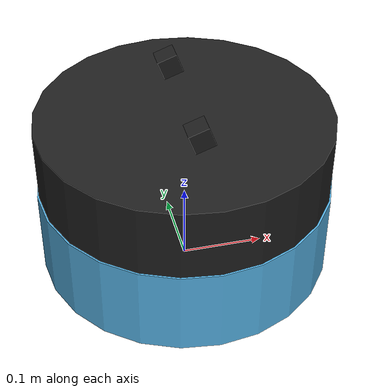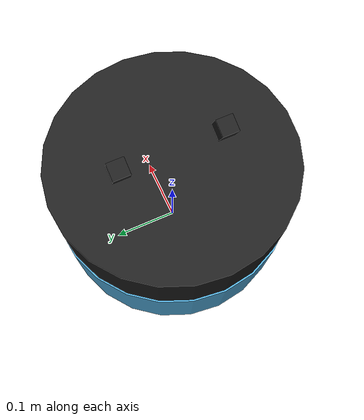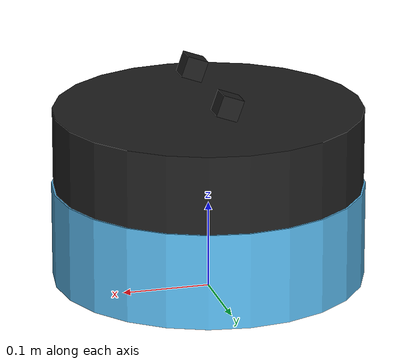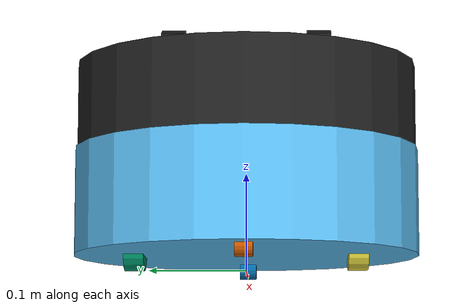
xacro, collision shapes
<?xml version="1.0"?>
<robot name="kobuki_standalone"
       xmlns:sensor="http://playerstage.sourceforge.net/gazebo/xmlschema/#sensor"
       xmlns:controller="http://playerstage.sourceforge.net/gazebo/xmlschema/#controller"
       xmlns:interface="http://playerstage.sourceforge.net/gazebo/xmlschema/#interface"
       xmlns:xacro="http://ros.org/wiki/xacro">

  <!-- Defines the kobuki component tag. -->
  <xacro:include filename="$(find robot_descriptions)/UGV2/urdf/hast_ugv2_kobuki.urdf.xacro" />
  <kobuki_stereo/>
</robot>

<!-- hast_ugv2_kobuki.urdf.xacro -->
<robot name="kobuki" xmlns:xacro="http://ros.org/wiki/xacro">
  <xacro:property name="X_ROBOT_NAMESPACE" value="/gazebo/kobuki" />
  <!-- Included Files -->
    <xacro:include filename="$(find robot_descriptions)/UGV2/urdf/common_properties.urdf.xacro"/>
    <xacro:include filename="$(find robot_descriptions)/UGV2/urdf/hast_ugv2_pgrstereo.urdf.xacro"/>
    <xacro:include filename="$(find robot_descriptions)/UGV2/urdf/hast_ugv2_kobuki_gazebo.urdf.xacro"/>
  <!-- Xacro properties -->
    <xacro:property name="X_PI" value="3.1415926535897931" />
    <xacro:property name="X_RADIUS" value="0.02" />
    <xacro:property name="X_LENGTH" value="0.1" />
    <xacro:property name="camera_box" value="0.025" /> <!-- Size of square 'camera' box -->

  <xacro:macro name="kobuki_stereo">
    <!-- Kobuki Hardware -->
      <link name="base_footprint"/>
      <joint name="base_joint" type="fixed">
        <origin xyz="0 0 0.0102" rpy="0 0 0" />
        <parent link="base_footprint"/>
        <child link="${X_ROBOT_NAMESPACE}/base_link" />
      </joint>
      <link name="${X_ROBOT_NAMESPACE}/base_link">
        <visual>
          <geometry>
            <!-- new mesh -->
            <mesh filename="package://robot_descriptions/UGV2/meshes/main_body.dae" />
          </geometry>
          <origin xyz="0.001 0 0.05199" rpy="0 0 0"/>
        </visual>
        <collision name="base">
          <geometry>
            <cylinder length="0.10938" radius="0.178"/>
          </geometry>
          <origin xyz="0.0 0 0.05949" rpy="0 0 0"/>
        </collision>
        <inertial>
          <mass value="2.4"/> <!-- 2.4/2.6 kg for small/big battery pack -->
          <origin xyz="0.01 0 0"/>
          <inertia ixx="0.019995" ixy="0.0" ixz="0.0" iyy="0.019995" iyz="0.0" izz="0.03675" />
        </inertial>
      </link>

      <joint name="wheel_left_joint" type="continuous">
			<parent link="${X_ROBOT_NAMESPACE}/base_link"/>
			<child link="${X_ROBOT_NAMESPACE}/wheel_left_link"/>
			<origin xyz="0.00 ${0.23/2} 0.0250" rpy="${-M_PI/2} 0 0"/>
			<axis xyz="0 0 1"/>
      </joint>
      <link name="${X_ROBOT_NAMESPACE}/wheel_left_link">
			<visual>
			 <geometry>
			   <mesh filename="package://robot_descriptions/UGV2/meshes/wheel.dae"/>
			 </geometry>
			 <origin xyz="0 0 0" rpy="0 0 0"/>
			</visual>
			<collision>
			 <geometry>
			   <cylinder length="0.0206" radius="0.0352"/>
			 </geometry>
			 <origin rpy="0 0 0" xyz="0 0 0"/>
			</collision>
			<inertial>
				<mass value="0.01" />
				<origin xyz="0 0 0" />
				<inertia ixx="0.001" ixy="0.0" ixz="0.0" iyy="0.001" iyz="0.0" izz="0.001" />
			</inertial>
      </link>

      <joint name="wheel_right_joint" type="continuous">
			<parent link="${X_ROBOT_NAMESPACE}/base_link"/>
			<child link="${X_ROBOT_NAMESPACE}/wheel_right_link"/>
			<origin xyz="0.00 -${0.23/2} 0.0250" rpy="${-M_PI/2} 0 0"/>
			<axis xyz="0 0 1"/>
      </joint>
      <link name="${X_ROBOT_NAMESPACE}/wheel_right_link">
			<visual>
			 <geometry>
			   <mesh filename="package://robot_descriptions/UGV2/meshes/wheel.dae"/>
			 </geometry>
			 <origin xyz="0 0 0" rpy="0 0 0"/>
			</visual>
			<collision>
			 <geometry>
			   <cylinder length="0.0206" radius="0.0350"/>
			 </geometry>
			 <origin rpy="0 0 0" xyz="0 0 0"/>
			</collision>
			<inertial>
				<mass value="0.01" />
				<origin xyz="0 0 0" />
				<inertia ixx="0.001" ixy="0.0" ixz="0.0" iyy="0.001" iyz="0.0" izz="0.001" />
			</inertial>
      </link>

		<joint name="caster_front_joint" type="fixed">
			<parent link="${X_ROBOT_NAMESPACE}/base_link"/>
			<child link="${X_ROBOT_NAMESPACE}/caster_front_link"/>
			<origin xyz="0.115 0.0 0.007" rpy="${-M_PI/2} 0 0"/>
		</joint>
		<link name="${X_ROBOT_NAMESPACE}/caster_front_link">
			<collision>
			 <geometry>
			   <cylinder length="0.0176" radius="0.017"/>
			 </geometry>
			 <origin rpy="0 0 0" xyz="0 0 0"/>
			</collision>
			<inertial>
			<mass value="0.01" />
			<origin xyz="0 0 0" />
			<inertia ixx="0.001" ixy="0.0" ixz="0.0" iyy="0.001" iyz="0.0" izz="0.001" />
			</inertial>
		</link>

		<joint name="caster_back_joint" type="fixed">
			<parent link="${X_ROBOT_NAMESPACE}/base_link"/>
			<child link="${X_ROBOT_NAMESPACE}/caster_back_link"/>
			<origin xyz="-0.135 0.0 0.009" rpy="${-M_PI/2} 0 0"/>
		</joint>
		<link name="${X_ROBOT_NAMESPACE}/caster_back_link">
			<collision>
				<geometry>
					<cylinder length="0.0176" radius="0.017"/>
				</geometry>
				<origin rpy="0 0 0" xyz="0 0 0"/>
			</collision>
			<inertial>
			<mass value="0.01" />
			<origin xyz="0 0 0" />
			<inertia ixx="0.001" ixy="0.0" ixz="0.0" iyy="0.001" iyz="0.0" izz="0.001" />
			</inertial>
		</link>

    <!-- PC and Camera support -->
      <joint name="frame_joint" type="fixed">
        <origin xyz="0 0 0.148" rpy="0 0 0" />
        <parent link="${X_ROBOT_NAMESPACE}/base_link"/>
        <child link="${X_ROBOT_NAMESPACE}/frame_link" />
      </joint>
      <link name="${X_ROBOT_NAMESPACE}/frame_link">
        <visual>
          <geometry>
            <!-- new mesh -->
            <mesh filename="package://robot_descriptions/UGV2/meshes/hast_kobuki_frame_grey.dae" />
          </geometry>
          <origin xyz="0 0 0" rpy="0 0 0"/>
          <material name="black"/>
        </visual>
        <collision>
          <geometry>
            <cylinder length="0.10938" radius="0.176"/>
          </geometry>
          <origin xyz="0 0 0" rpy="0 0 0"/>
        </collision>
        <inertial>
          <mass value="0.1"/> <!-- 2.4/2.6 kg for small/big battery pack -->
          <origin xyz="0 0 0"/>
          <inertia ixx="0.0001" ixy="0.0" ixz="0.0" iyy="0.0001" iyz="0.0" izz="0.0001" />
        </inertial>
      </link>

    <!-- Camera Definitions -->
      <joint name="stereo_center_joint" type="fixed">
          <origin xyz="-0.0014 0 0.0804" rpy="0 -${20*X_PI/180} 0" />
          <parent link="${X_ROBOT_NAMESPACE}/frame_link"/>
          <child link="${X_ROBOT_NAMESPACE}/stereo_center"/>
      </joint>
      <link name="${X_ROBOT_NAMESPACE}/stereo_center"/>

      <joint name="left_camera_joint" type="fixed">
          <origin xyz="0 0.0762 0" rpy="0 0 0" />
          <parent link="${X_ROBOT_NAMESPACE}/stereo_center"/>
          <child link="${X_ROBOT_NAMESPACE}/stereo_left"/>
      </joint>
      <link name="${X_ROBOT_NAMESPACE}/stereo_left">
        <collision>
          <origin xyz="0 0 0" rpy="0 0 0"/>
          <geometry>
            <box size="${camera_box} ${camera_box} ${camera_box}"/>
          </geometry>
        </collision>
        <visual>
          <origin xyz="0 0 0" rpy="0 0 0"/>
          <geometry>
            <box size="${camera_box} ${camera_box} ${camera_box}"/>
          </geometry>
          <material name="black"/>
        </visual>
        <inertial>
          <mass value="1e-5" />
          <origin xyz="0 0 0" rpy="0 0 0"/>
          <inertia ixx="1e-6" ixy="0" ixz="0" iyy="1e-6" iyz="0" izz="1e-6" />
        </inertial>
      </link>

      <joint name="right_camera_joint" type="fixed">
          <origin xyz="0 -0.0762 0" rpy="0 0 0" />
          <parent link="${X_ROBOT_NAMESPACE}/stereo_center"/>
          <child link="${X_ROBOT_NAMESPACE}/stereo_right"/>
      </joint>
      <link name="${X_ROBOT_NAMESPACE}/stereo_right">
        <collision>
          <origin xyz="0 0 0" rpy="0 0 0"/>
          <geometry>
            <box size="${camera_box} ${camera_box} ${camera_box}"/>
          </geometry>
        </collision>
        <visual>
          <origin xyz="0 0 0" rpy="0 0 0"/>
          <geometry>
            <box size="${camera_box} ${camera_box} ${camera_box}"/>
          </geometry>
          <material name="black"/>
        </visual>
        <inertial>
          <mass value="1e-5" />
          <origin xyz="0 0 0" rpy="0 0 0"/>
          <inertia ixx="1e-6" ixy="0" ixz="0" iyy="1e-6" iyz="0" izz="1e-6" />
        </inertial>
      </link>

    <!-- Kobuki's sensors -->
      <!-- gyro -->
        <joint name="gyro_joint" type="fixed">
          <axis xyz="0 1 0"/>
          <origin xyz="0.056 0.062 0.0202" rpy="0 0 0"/>
          <parent link="${X_ROBOT_NAMESPACE}/base_link"/>
          <child link="${X_ROBOT_NAMESPACE}/gyro_link"/>
        </joint>
        <link name="${X_ROBOT_NAMESPACE}/gyro_link">
          <inertial>
          <mass value="0.001"/>
          <origin xyz="0 0 0" rpy="0 0 0"/>
          <inertia ixx="0.0001" ixy="0" ixz="0" iyy="0.000001" iyz="0" izz="0.0001"/>
          </inertial>
        </link>

      <!-- cliff_sensor_left_joint -->
        <joint name="cliff_sensor_left_joint" type="fixed">
          <origin xyz="0.08734 0.13601 0.0214" rpy="0 ${M_PI/2} 0" />
          <parent link="${X_ROBOT_NAMESPACE}/base_link"/>
          <child link="${X_ROBOT_NAMESPACE}/cliff_sensor_left_link" />
          </joint>
        <link name="${X_ROBOT_NAMESPACE}/cliff_sensor_left_link">
          <inertial>
          <mass value="0.0001" />
          <origin xyz="0 0 0" />
          <inertia ixx="0.0001" ixy="0.0" ixz="0.0" iyy="0.0001" iyz="0.0" izz="0.0001" />
          </inertial>
        </link>

      <!-- cliff_sensor_right -->
        <joint name="cliff_sensor_right_joint" type="fixed">
          <origin xyz="0.085 -0.13601 0.0214" rpy="0 ${M_PI/2} 0" />
          <parent link="${X_ROBOT_NAMESPACE}/base_link"/>
          <child link="${X_ROBOT_NAMESPACE}/cliff_sensor_right_link" />
        </joint>
        <link name="${X_ROBOT_NAMESPACE}/cliff_sensor_right_link">
          <inertial>
          <mass value="0.0001" />
          <origin xyz="0 0 0" />
          <inertia ixx="0.0001" ixy="0.0" ixz="0.0" iyy="0.0001" iyz="0.0" izz="0.0001" />
          </inertial>
        </link>

      <!-- cliff_sensor_front -->
        <joint name="cliff_sensor_front_joint" type="fixed">
          <origin xyz="0.156 0.00 0.0214" rpy="0 ${M_PI/2} 0" />
          <parent link="${X_ROBOT_NAMESPACE}/base_link"/>
          <child link="${X_ROBOT_NAMESPACE}/cliff_sensor_front_link" />
        </joint>
        <link name="${X_ROBOT_NAMESPACE}/cliff_sensor_front_link">
          <inertial>
          <mass value="0.0001" />
          <origin xyz="0 0 0" />
          <inertia ixx="0.0001" ixy="0.0" ixz="0.0" iyy="0.0001" iyz="0.0" izz="0.0001" />
          </inertial>
        </link>

		<!-- Kobuki Gazebo simulation details -->
			<kobuki_sim/>

	</xacro:macro>
</robot>

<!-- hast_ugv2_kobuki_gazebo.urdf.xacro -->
<robot name="kobuki_sim" xmlns:xacro="http://ros.org/wiki/xacro">
	<xacro:property name="X_ROBOT_NAMESPACE" value="/gazebo/kobuki" />
	<xacro:macro name="kobuki_sim">
		<gazebo>
			<plugin name="kobuki_controller" filename="libugv2_gazebo_ros_kobuki.so">
				<publish_tf>1</publish_tf>
				<imu_name>imu</imu_name>
				<velocity_command_timeout>0.6</velocity_command_timeout>
				<viconBaseTF>/vicon/kobuki/base_TF</viconBaseTF>
				<ckfWheelTopic>/hast/kobuki/odom</ckfWheelTopic>
				<normStd>0.1</normStd>
				<normMean>0.0</normMean>
				<commandTopic>${X_ROBOT_NAMESPACE}/cmd_vel_raw</commandTopic>
				<!-- Wheels -->
					<left_wheel_joint_name>wheel_left_joint</left_wheel_joint_name>
					<right_wheel_joint_name>wheel_right_joint</right_wheel_joint_name>
					<wheel_separation>.230</wheel_separation>
					<wheel_diameter>0.070</wheel_diameter>
					<torque>1.0</torque>
				<!-- Cliff Sensors -->
					<cliff_sensor_left_name>cliff_sensor_left</cliff_sensor_left_name>
					<cliff_sensor_right_name>cliff_sensor_right</cliff_sensor_right_name>
					<cliff_sensor_center_name>cliff_sensor_front</cliff_sensor_center_name>
					<cliff_detection_threshold>0.04</cliff_detection_threshold>
					<bumper_name>bumpers</bumper_name>
			</plugin>
		</gazebo>

		<gazebo reference="${X_ROBOT_NAMESPACE}/base_link">
			<mu1>0.3</mu1>
			<mu2>0.3</mu2>
			<sensor type="contact" name="bumpers">
				<always_on>1</always_on>
				<update_rate>50.0</update_rate>
				<visualize>true</visualize>
				<contact>
					<collision>base_footprint_fixed_joint_lump__base_collision</collision>
				</contact>
			</sensor>
		</gazebo>

		<gazebo reference="${X_ROBOT_NAMESPACE}/gyro_link">
		   <sensor type="imu" name="imu">
	        <always_on>true</always_on>
	        <update_rate>50</update_rate>
	        <visualize>false</visualize>
	        <imu>
	          <noise>
	            <type>gaussian</type>
		          <rate>
		            <mean>0.0</mean>
		            <stddev>${0.0014*0.0014}</stddev> <!-- 0.25 x 0.25 (deg/s) -->
		            <bias_mean>0.0</bias_mean>
		            <bias_stddev>0.0</bias_stddev>
		          </rate>
			        <accel> <!-- not used in the plugin and real robot, hence using tutorial values -->
				        <mean>0.0</mean>
				        <stddev>1.7e-2</stddev>
				        <bias_mean>0.1</bias_mean>
				        <bias_stddev>0.001</bias_stddev>
			        </accel>
	          </noise>
		      </imu>
	      </sensor>
		</gazebo>

		<!-- Wheels -->
			<gazebo reference="${X_ROBOT_NAMESPACE}/wheel_left_link">
				<mu1>1.0</mu1>
				<mu2>1.0</mu2>
				<kp>1000000.0</kp>
				<kd>100.0</kd>
				<minDepth>0.001</minDepth>
				<maxVel>1.0</maxVel>
			</gazebo>

			<gazebo reference="${X_ROBOT_NAMESPACE}/wheel_right_link">
				<mu1>1.0</mu1>
				<mu2>1.0</mu2>
				<kp>1000000.0</kp>
				<kd>100.0</kd>
				<minDepth>0.001</minDepth>
				<maxVel>1.0</maxVel>
			</gazebo>

			<gazebo reference="${X_ROBOT_NAMESPACE}/caster_front_link">
				<mu1>0.0</mu1>
				<mu2>0.0</mu2>
				<kp>1000000.0</kp>
				<kd>100.0</kd>
				<minDepth>0.001</minDepth>
				<maxVel>1.0</maxVel>
			</gazebo>

			<gazebo reference="${X_ROBOT_NAMESPACE}/caster_back_link">
				<mu1>0.0</mu1>
				<mu2>0.0</mu2>
				<kp>1000000.0</kp>
				<kd>100.0</kd>
				<minDepth>0.001</minDepth>
				<maxVel>1.0</maxVel>
			</gazebo>

		<!-- Cliff Sensors -->
			<gazebo reference="${X_ROBOT_NAMESPACE}/cliff_sensor_left_link">
			    <sensor type="ray" name="cliff_sensor_left">
			      <always_on>true</always_on>
			      <update_rate>50</update_rate>
			      <visualize>true</visualize>
			      <ray>
			        <scan>
			          <horizontal>
			            <samples>50</samples>
			            <resolution>1.0</resolution>
			            <min_angle>-0.0436</min_angle>  <!-- -2.5 degree -->
			            <max_angle>0.0436</max_angle> <!-- 2.5 degree -->
			          </horizontal>
				<!--            Can't use vertical rays until this bug is resolved: -->
				<!--            https://bitbucket.org/osrf/gazebo/issue/509/vertical-sensor-doesnt-works -->
			        </scan>
			        <range>
			          <min>0.01</min>
			          <max>0.15</max>
			          <resolution>1.0</resolution>
			        </range>
			      </ray>
			    </sensor>
			</gazebo>

			<gazebo reference="${X_ROBOT_NAMESPACE}/cliff_sensor_right_link">
			    <sensor type="ray" name="cliff_sensor_right">
			      <always_on>true</always_on>
			      <update_rate>50</update_rate>
			      <visualize>true</visualize>
			      <ray>
			        <scan>
			          <horizontal>
			            <samples>50</samples>
			            <resolution>1.0</resolution>
			            <min_angle>-0.0436</min_angle>  <!-- -2.5 degree -->
			            <max_angle>0.0436</max_angle> <!-- 2.5 degree -->
			          </horizontal>
				<!--            Can't use vertical rays until this bug is resolved: -->
				<!--            https://bitbucket.org/osrf/gazebo/issue/509/vertical-sensor-doesnt-works -->
			        </scan>
			        <range>
			          <min>0.01</min>
			          <max>0.15</max>
			          <resolution>1.0</resolution>
			        </range>
			      </ray>
			    </sensor>
			</gazebo>

			<gazebo reference="${X_ROBOT_NAMESPACE}/cliff_sensor_front_link">
			    <sensor type="ray" name="cliff_sensor_front">
			      <always_on>true</always_on>
			      <update_rate>50</update_rate>
			      <visualize>true</visualize>
			      <ray>
			        <scan>
			          <horizontal>
			            <samples>50</samples>
			            <resolution>1.0</resolution>
			            <min_angle>-0.0436</min_angle>  <!-- -2.5 degree -->
			            <max_angle>0.0436</max_angle> <!-- 2.5 degree -->
			          </horizontal>
				<!-- 	          Can't use vertical rays until this bug is resolved: -->
				<!--            https://bitbucket.org/osrf/gazebo/issue/509/vertical-sensor-doesnt-works -->
			        </scan>
			        <range>
			          <min>0.01</min>
			          <max>0.15</max>
			          <resolution>1.0</resolution>
			        </range>
			      </ray>
			    </sensor>
			</gazebo>

	</xacro:macro>
</robot>
